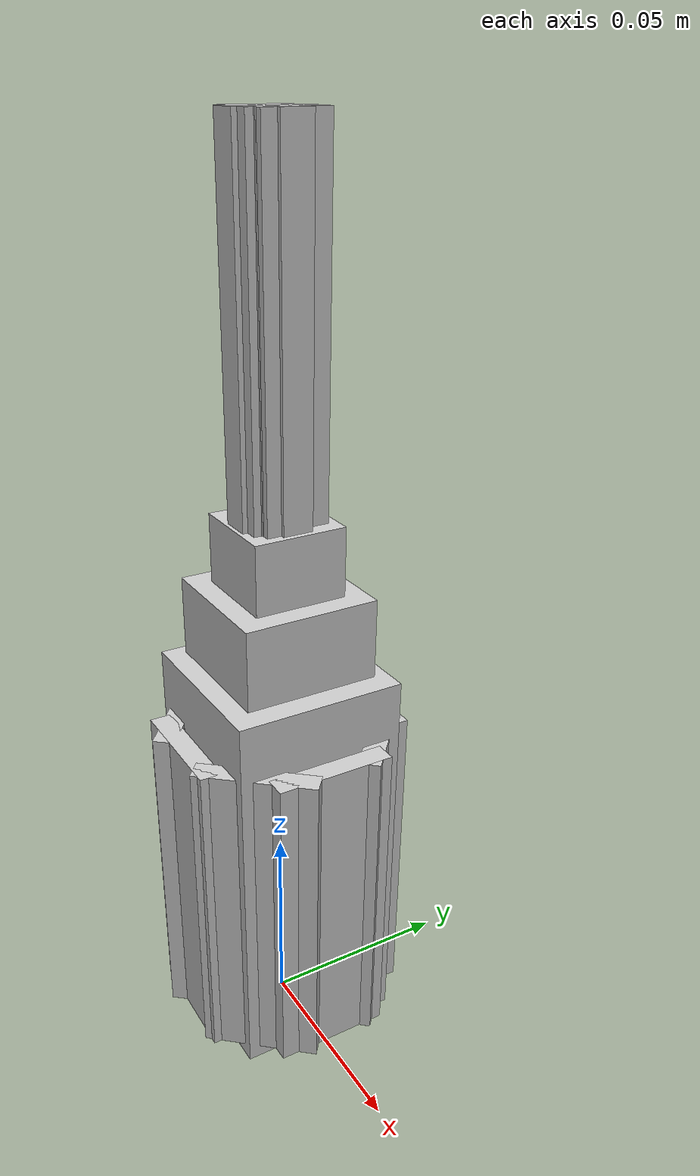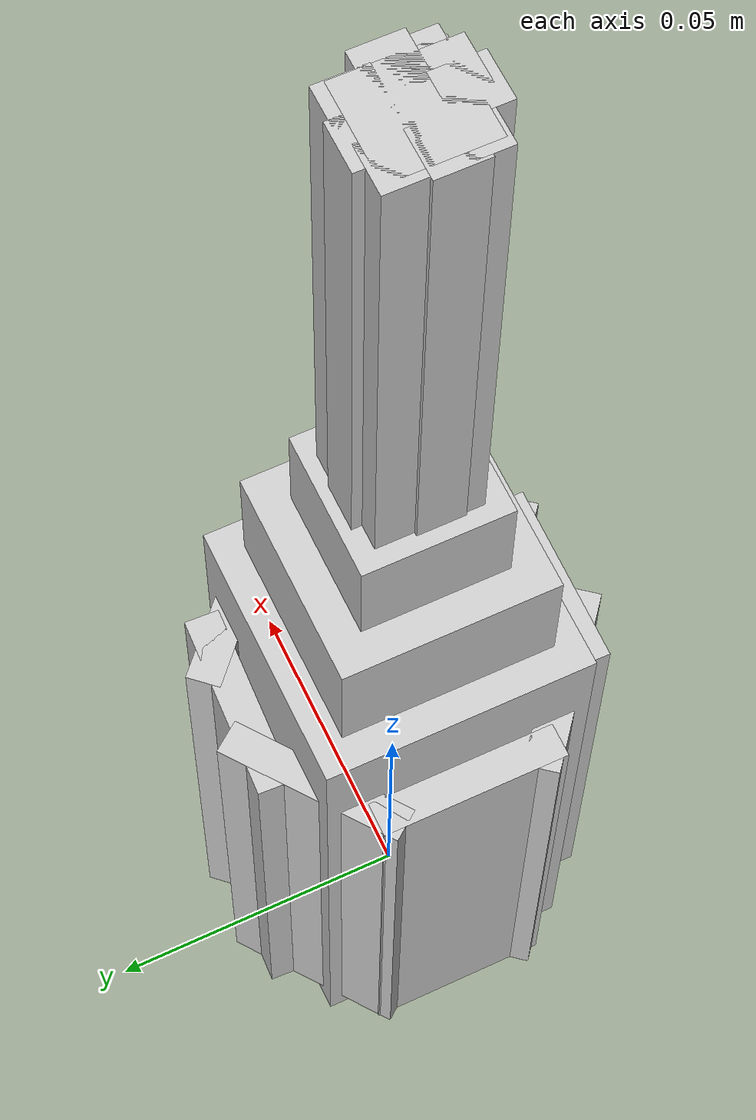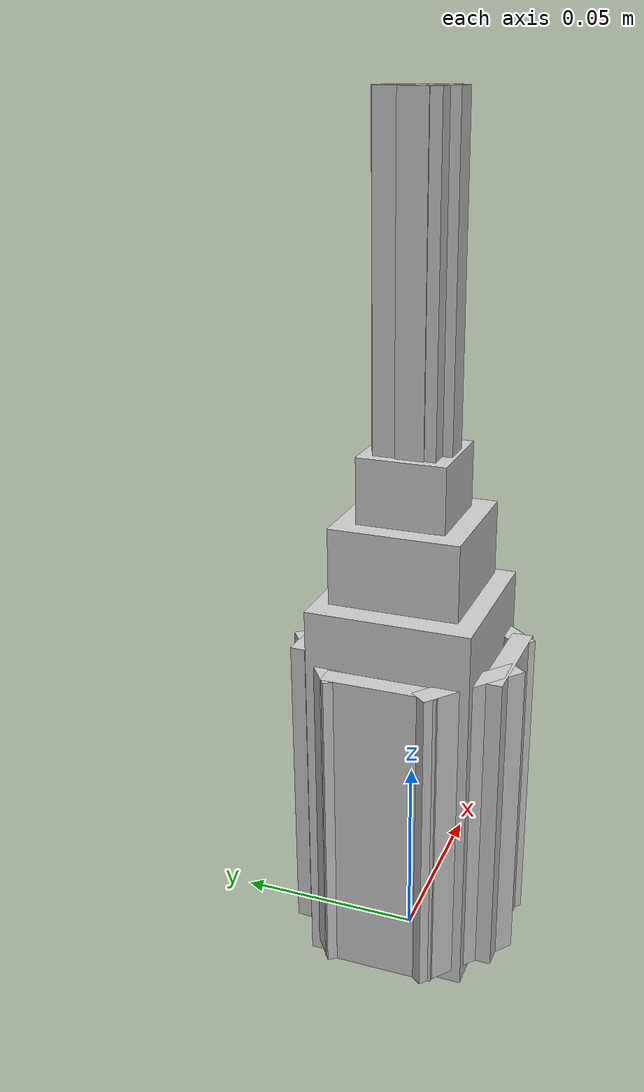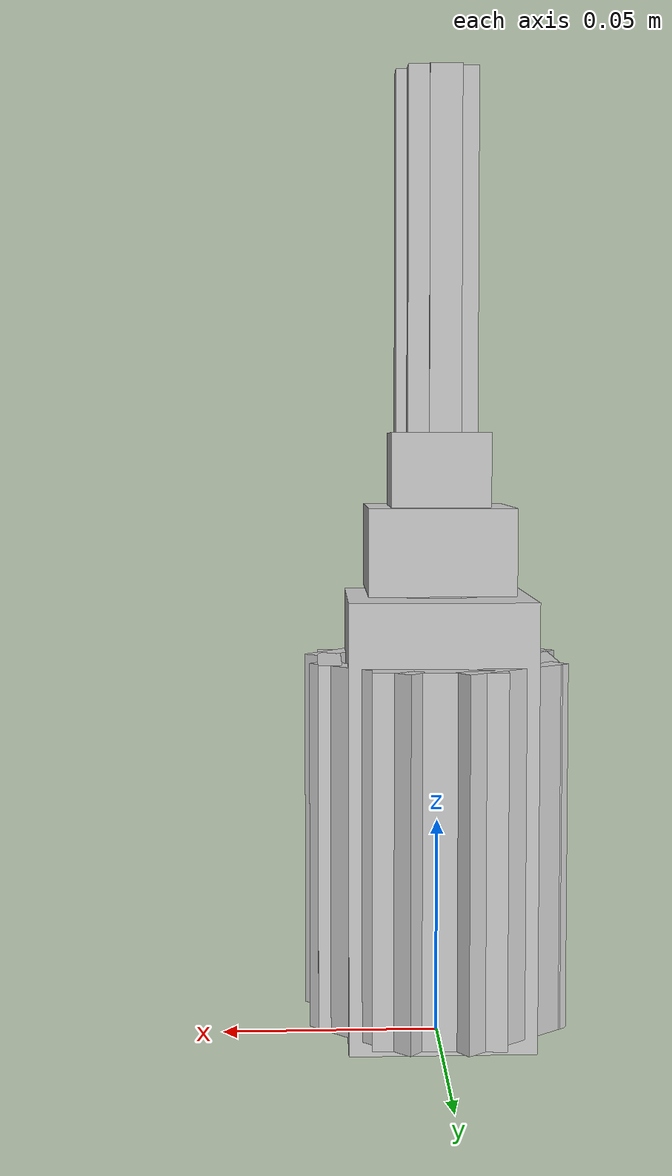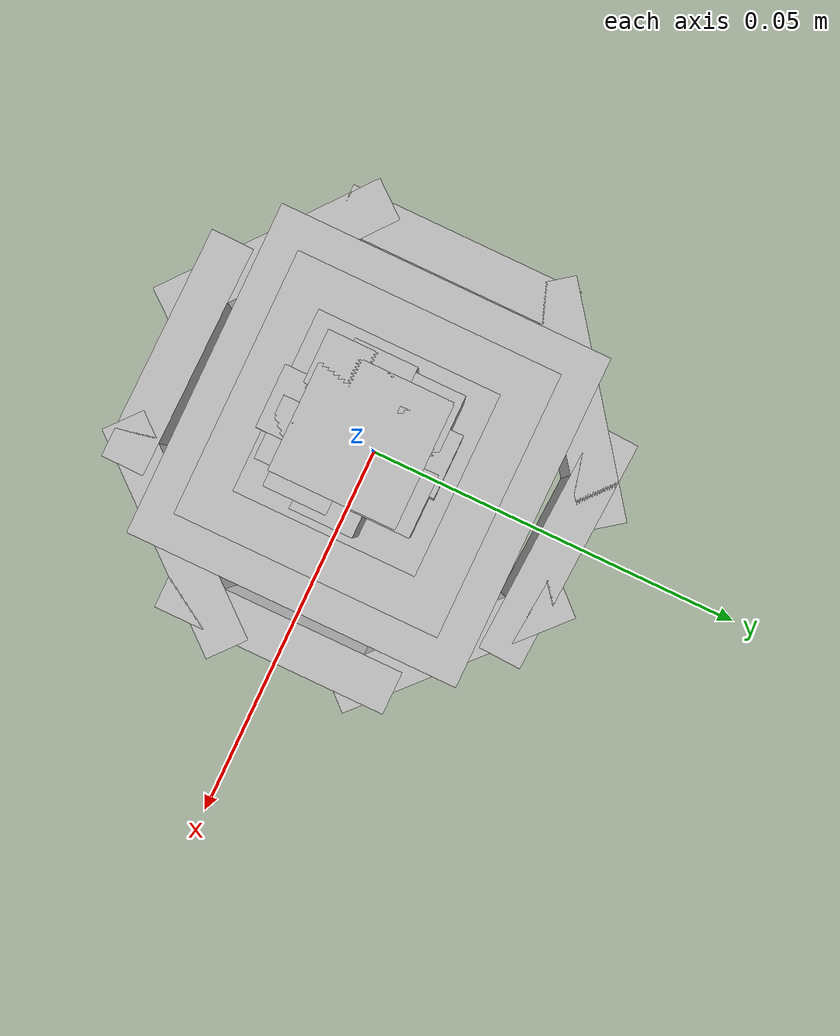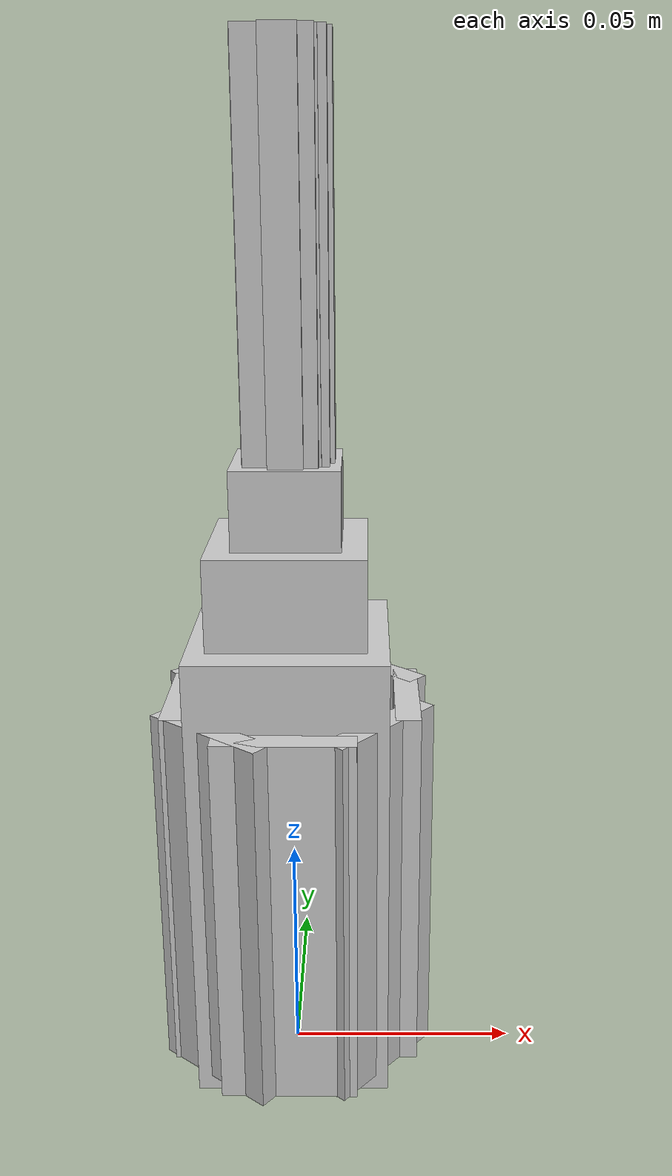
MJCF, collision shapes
<mujoco model="wine_bottle_red_main">
  <asset>
  <texture file="label_wine.png" name="tex-wine_bottle_red_main" type="2d" />
  <material name="wine_bottle_red_main" reflectance="0.5" texrepeat="1 1" texture="tex-wine_bottle_red_main" texuniform="false" />
  <mesh file="visual/wine_bottle_red_main_vis.msh" name="wine_bottle_red_main_vis" scale="0.7 0.7 0.7" /></asset>
  <worldbody>
    <body>
      <body name="object">
      <geom solimp="0.998 0.998 0.001" solref="0.001 1" density="100" friction="0.95 0.3 0.1" type="mesh" mesh="wine_bottle_red_main_vis" conaffinity="0" contype="0" group="1" material="wine_bottle_red_main" /><geom solimp="0.998 0.998 0.001" solref="0.001 1" density="100" friction="0.95 0.3 0.1" type="box" pos="-0.00000 -0.00000 0.05216" quat="0.00000 0.00000 0.00000 1.00000" size="0.02105 0.02105 0.05061" group="0" rgba="0.8 0.8 0.8 0.3" /><geom solimp="0.998 0.998 0.001" solref="0.001 1" density="100" friction="0.95 0.3 0.1" type="box" pos="-0.00000 -0.00000 0.14401" quat="0.00000 0.00000 0.00000 1.00000" size="0.00728 0.00728 0.07725" group="0" rgba="0.8 0.8 0.8 0.3" /><geom solimp="0.998 0.998 0.001" solref="0.001 1" density="100" friction="0.95 0.3 0.1" type="box" pos="-0.00000 -0.00000 0.11353" quat="0.50000 0.50000 -0.50000 0.50000" size="0.00980 0.01653 0.01653" group="0" rgba="0.8 0.8 0.8 0.3" /><geom solimp="0.998 0.998 0.001" solref="0.001 1" density="100" friction="0.95 0.3 0.1" type="box" pos="0.00630 0.00000 0.14401" quat="0.00000 0.00000 0.00000 1.00000" size="0.00361 0.00361 0.07725" group="0" rgba="0.8 0.8 0.8 0.3" /><geom solimp="0.998 0.998 0.001" solref="0.001 1" density="100" friction="0.95 0.3 0.1" type="box" pos="0.00534 -0.00345 0.14401" quat="0.00000 0.00000 0.00000 1.00000" size="0.00361 0.00361 0.07725" group="0" rgba="0.8 0.8 0.8 0.3" /><geom solimp="0.998 0.998 0.001" solref="0.001 1" density="100" friction="0.95 0.3 0.1" type="box" pos="0.00312 -0.00547 0.14401" quat="0.00000 0.00000 0.00000 1.00000" size="0.00361 0.00361 0.07725" group="0" rgba="0.8 0.8 0.8 0.3" /><geom solimp="0.998 0.998 0.001" solref="0.001 1" density="100" friction="0.95 0.3 0.1" type="box" pos="0.00017 -0.00670 0.14401" quat="0.00000 0.00000 0.00000 1.00000" size="0.00361 0.00361 0.07725" group="0" rgba="0.8 0.8 0.8 0.3" /><geom solimp="0.998 0.998 0.001" solref="0.001 1" density="100" friction="0.95 0.3 0.1" type="box" pos="-0.00500 -0.00421 0.14401" quat="0.00000 0.70711 0.70711 0.00000" size="0.00361 0.00361 0.07725" group="0" rgba="0.8 0.8 0.8 0.3" /><geom solimp="0.998 0.998 0.001" solref="0.001 1" density="100" friction="0.95 0.3 0.1" type="box" pos="-0.00538 -0.00134 0.14401" quat="0.00000 0.00000 1.00000 0.00000" size="0.00361 0.00361 0.07725" group="0" rgba="0.8 0.8 0.8 0.3" /><geom solimp="0.998 0.998 0.001" solref="0.001 1" density="100" friction="0.95 0.3 0.1" type="box" pos="-0.00480 0.00440 0.14401" quat="0.00000 0.00000 0.00000 1.00000" size="0.00361 0.00361 0.07725" group="0" rgba="0.8 0.8 0.8 0.3" /><geom solimp="0.998 0.998 0.001" solref="0.001 1" density="100" friction="0.95 0.3 0.1" type="box" pos="-0.00098 0.00593 0.14401" quat="0.00000 0.00000 1.00000 0.00000" size="0.00361 0.00361 0.07725" group="0" rgba="0.8 0.8 0.8 0.3" /><geom solimp="0.998 0.998 0.001" solref="0.001 1" density="100" friction="0.95 0.3 0.1" type="box" pos="0.00381 0.00536 0.14401" quat="0.00000 0.00000 0.00000 1.00000" size="0.00361 0.00361 0.07725" group="0" rgba="0.8 0.8 0.8 0.3" /><geom solimp="0.998 0.998 0.001" solref="0.001 1" density="100" friction="0.95 0.3 0.1" type="box" pos="-0.00000 -0.00000 0.13027" quat="0.50000 0.50000 -0.50000 0.50000" size="0.00980 0.01124 0.01124" group="0" rgba="0.8 0.8 0.8 0.3" /><geom solimp="0.998 0.998 0.001" solref="0.001 1" density="100" friction="0.95 0.3 0.1" type="box" pos="-0.02423 -0.00000 0.04663" quat="0.00000 0.00000 1.00000 0.00000" size="0.00270 0.01477 0.04171" group="0" rgba="0.8 0.8 0.8 0.3" /><geom solimp="0.998 0.998 0.001" solref="0.001 1" density="100" friction="0.95 0.3 0.1" type="box" pos="0.02504 0.00000 0.04663" quat="0.00000 0.00000 1.00000 0.00000" size="0.00270 0.01477 0.04171" group="0" rgba="0.8 0.8 0.8 0.3" /><geom solimp="0.998 0.998 0.001" solref="0.001 1" density="100" friction="0.95 0.3 0.1" type="box" pos="0.00120 0.02502 0.04663" quat="-0.00000 -0.72389 -0.68992 -0.00000" size="0.00270 0.01477 0.04171" group="0" rgba="0.8 0.8 0.8 0.3" /><geom solimp="0.998 0.998 0.001" solref="0.001 1" density="100" friction="0.95 0.3 0.1" type="box" pos="-0.00034 -0.02504 0.04663" quat="-0.00000 -0.71183 -0.70235 -0.00000" size="0.00270 0.01477 0.04171" group="0" rgba="0.8 0.8 0.8 0.3" /><geom solimp="0.998 0.998 0.001" solref="0.001 1" density="100" friction="0.95 0.3 0.1" type="box" pos="-0.01573 -0.01949 0.04663" quat="0.00000 -0.43119 0.90226 0.00000" size="0.00270 0.01477 0.04171" group="0" rgba="0.8 0.8 0.8 0.3" /><geom solimp="0.998 0.998 0.001" solref="0.001 1" density="100" friction="0.95 0.3 0.1" type="box" pos="-0.01499 0.02006 0.04663" quat="0.00000 -0.89402 0.44802 0.00000" size="0.00270 0.01477 0.04171" group="0" rgba="0.8 0.8 0.8 0.3" /><geom solimp="0.998 0.998 0.001" solref="0.001 1" density="100" friction="0.95 0.3 0.1" type="box" pos="0.01695 0.01844 0.04663" quat="-0.00000 -0.91561 -0.40207 -0.00000" size="0.00270 0.01477 0.04171" group="0" rgba="0.8 0.8 0.8 0.3" /><geom solimp="0.998 0.998 0.001" solref="0.001 1" density="100" friction="0.95 0.3 0.1" type="box" pos="0.01909 -0.01621 0.04663" quat="0.00000 0.34482 0.93867 0.00000" size="0.00270 0.01477 0.04171" group="0" rgba="0.8 0.8 0.8 0.3" /></body>
      <site rgba="0 0 0 0" size="0.005" pos="0 0 -0.06" name="bottom_site" />
      <site rgba="0 0 0 0" size="0.005" pos="0 0 0.04" name="top_site" />
      <site rgba="0 0 0 0" size="0.005" pos="0.025 0.025 0" name="horizontal_radius_site" />
    </body>
  </worldbody>
</mujoco>
